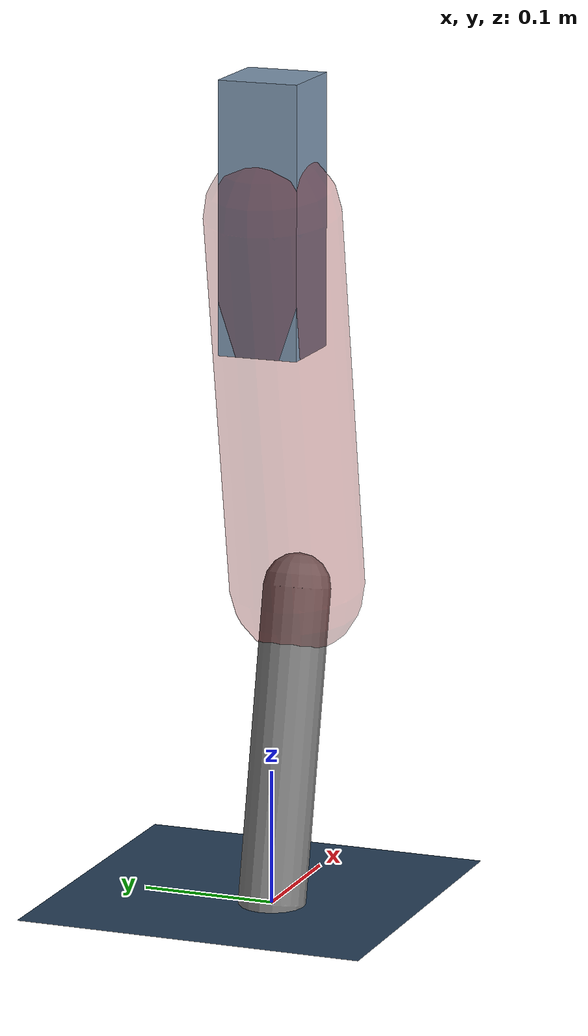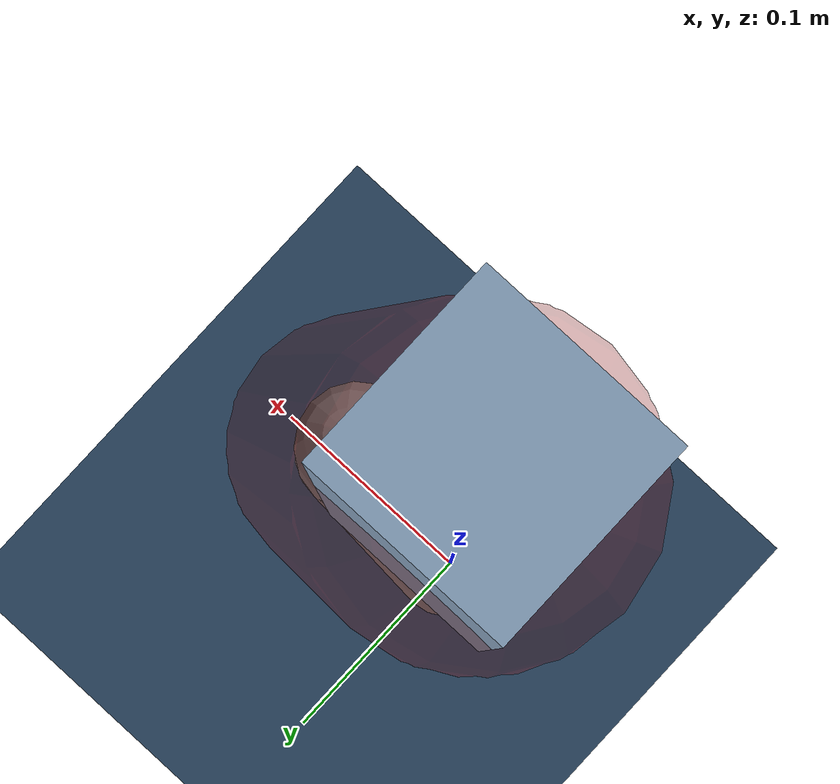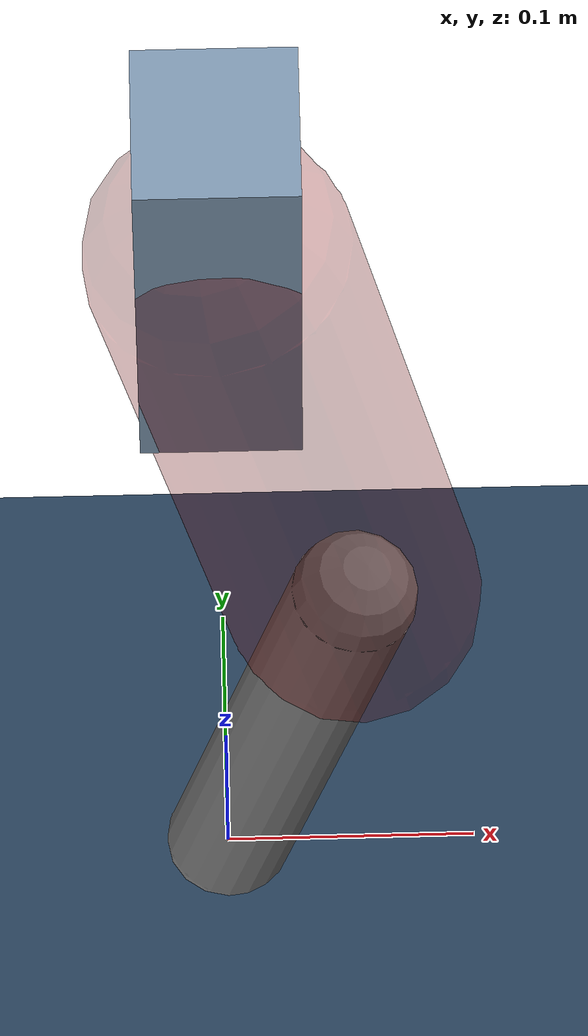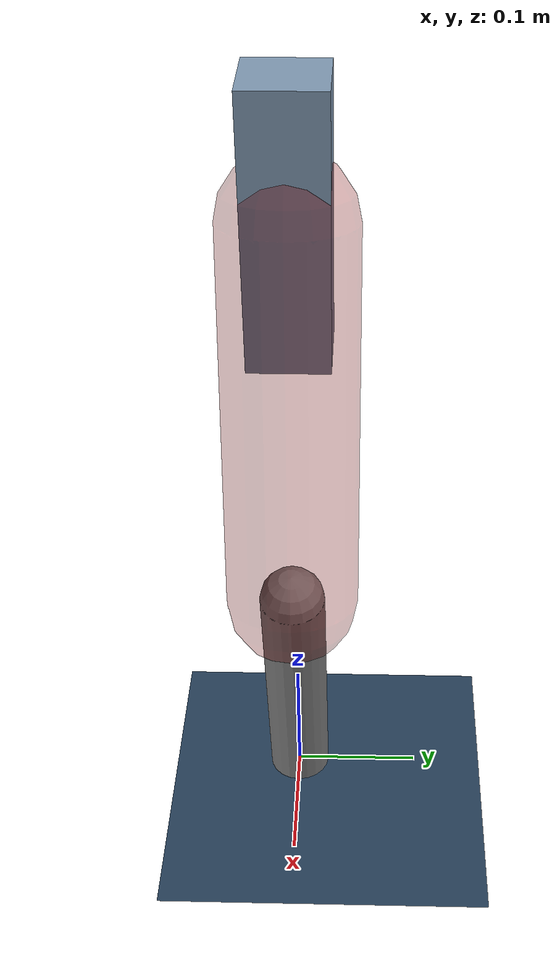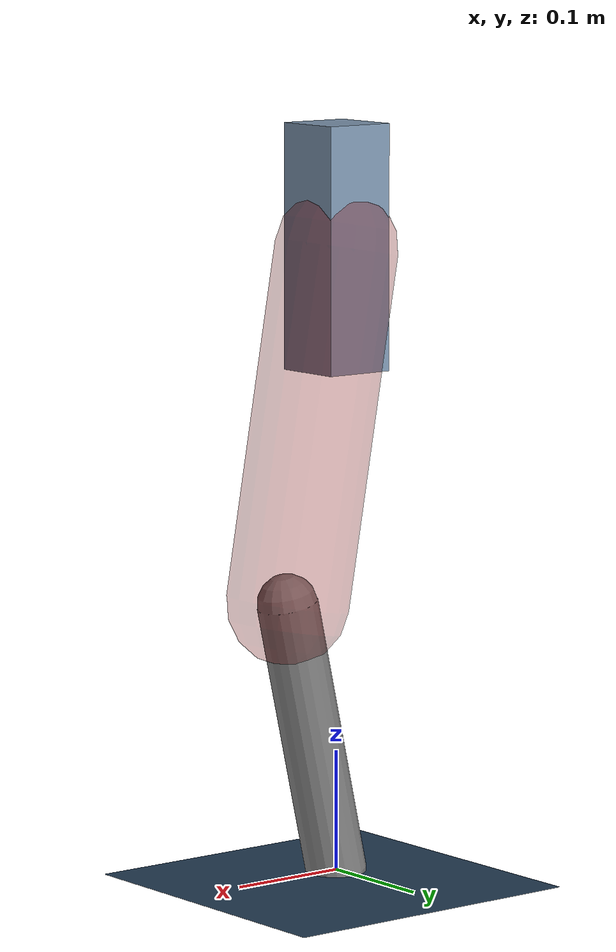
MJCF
<mujoco model="Hopper2D">
	<compiler inertiafromgeom="true" angle="radian" />
	<option timestep="0.001" integrator="implicit" cone="elliptic" solver="Newton" tolerance="1e-10" />

	<default>
		<geom contype="1" conaffinity="1" condim="3" friction="2 0.005 0.0001" solref="0.005 1" />
		<joint limited="true" damping="0.1" />
	</default>

	<asset>
		<texture name="skybox" type="skybox" builtin="gradient" rgb1=".4 .6 .8" rgb2="0 0 0" width="800" height="800" />
		<texture name="grid" type="2d" builtin="checker" rgb1=".1 .2 .3" rgb2=".2 .3 .4" width="300" height="300" mark="edge" markrgb=".2 .3 .4" />
		<material name="ground" texture="grid" texrepeat="1 1" texuniform="true" reflectance="0.1" />
		<material name="leg" rgba="0.5 0.6 0.7 1" />
	</asset>

	<worldbody>

		<geom name="floor" type="plane" size="5 5 0.25" material="ground" />

		<light directional="false" diffuse="0.8 0.8 0.8" specular="0.3 0.3 0.3" pos="0 0 2" dir="0 0 -1" />
		<light mode="targetbodycom" target="base" directional="false" diffuse="0.8 0.8 0.8" specular="0.3 0.3 0.3" pos="0 0 2" dir="0 0 -1" />

		<camera name="fixed" pos="0 -2 1" xyaxes="1 0 0 0 0 1" />
		<camera name="tracking" mode="trackcom" pos="0 -3 1" />

		<body name="root" pos="0 0 0.5147815615651066">
			<joint name="slide_x" type="slide" axis="1 0 0" range="-100 100" />
			<joint name="slide_z" type="slide" axis="0 0 1" range="0 10" />

			<body name="base" pos="0 0 0">
				<geom name="torso" type="box" size="0.03 0.03 0.1" mass="2.407" material="leg" />

				<body name="link1" pos="0 0 0" euler="0 1.3960091255820102 0">
					<joint type="hinge" axis="0 -1 0" pos="0 0 0" name="hinge1" limited="true" range="-3.14 3.14" stiffness="0" damping="0.1" />
					<geom name="thigh" type="capsule" fromto="0 0 0 0.29130128942992395 0 0" size="0.05" rgba="0.5 0 0 0.3" mass="0.9653134814607948" />

					<body name="link2" pos="0.29130128942992395 0 0" euler="0 0.3934908072400482 0">
						<joint type="hinge" axis="0 -1 0" pos="0 0 0" name="hinge2" limited="true" range="-3.14 3.14" stiffness="0" damping="0.1" />
						<geom name="shank" type="capsule" fromto="0 0 0 0.23348027213518263 0 0" size="0.025" mass="0.4288842177081461" />

					</body>
				</body>
			</body>
		</body>
	</worldbody>

	<actuator>
		<motor name="torque1" joint="hinge1" ctrlrange="-64.09832371601313 64.09832371601313" ctrllimited="true" gear="1" />
		<motor name="torque2" joint="hinge2" ctrlrange="-110.32834141208949 110.32834141208949" ctrllimited="true" gear="1" />
	</actuator>
</mujoco>
